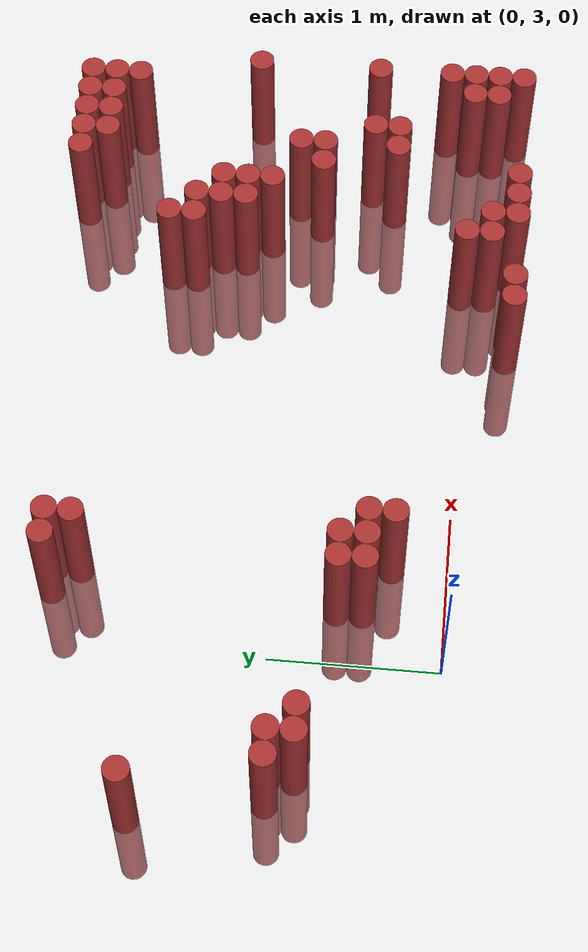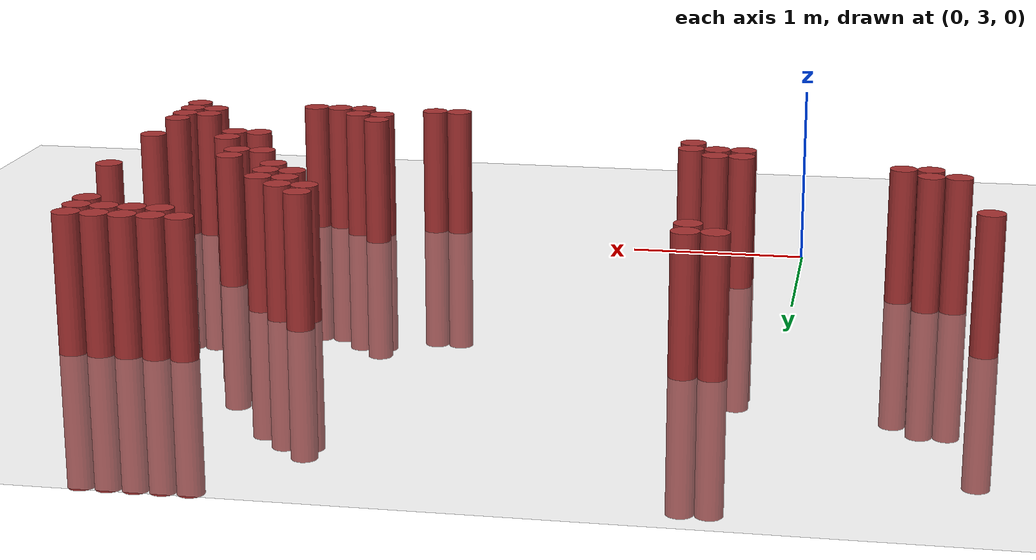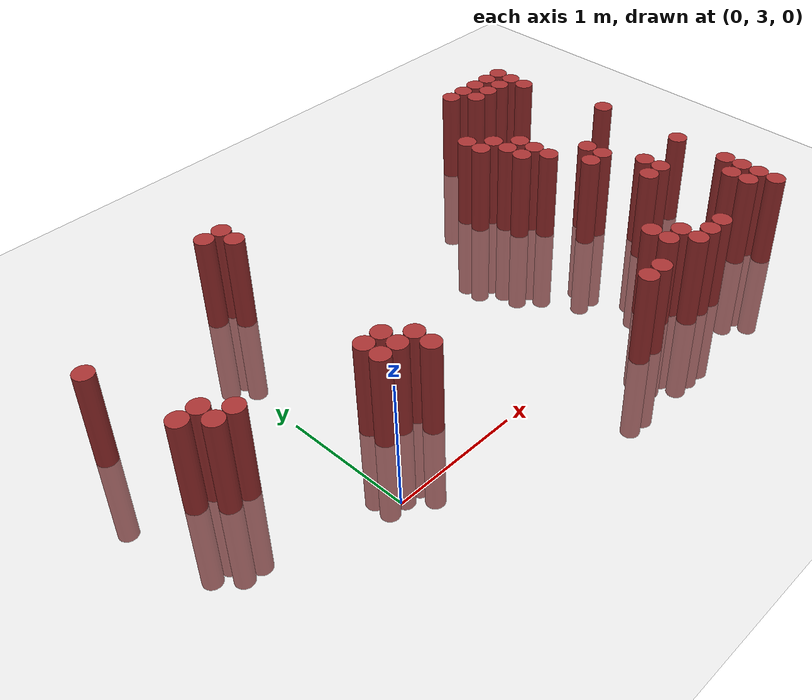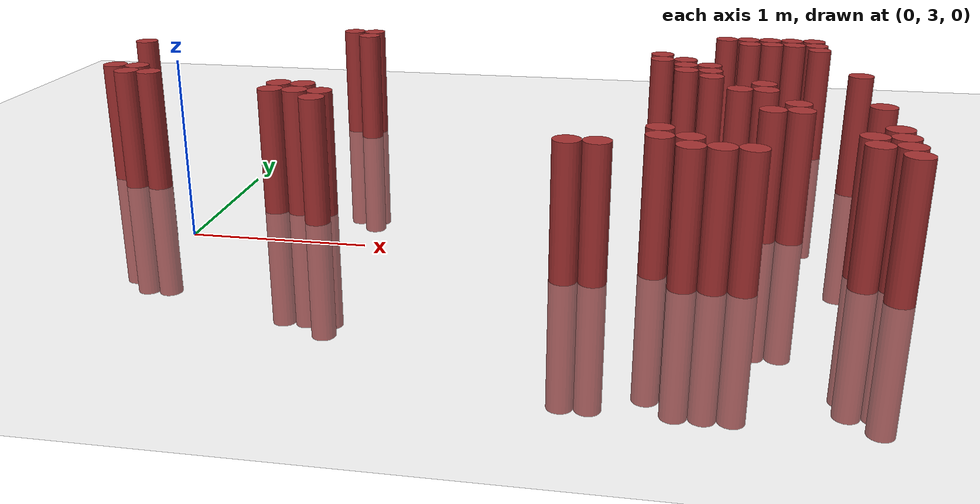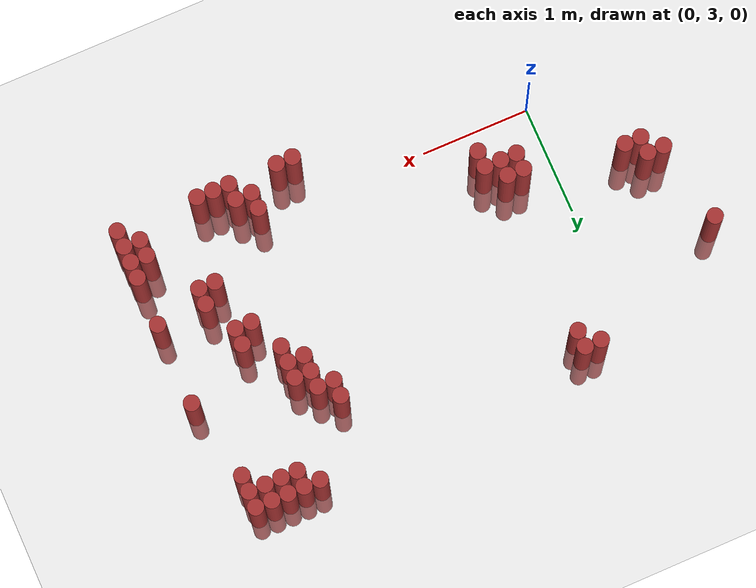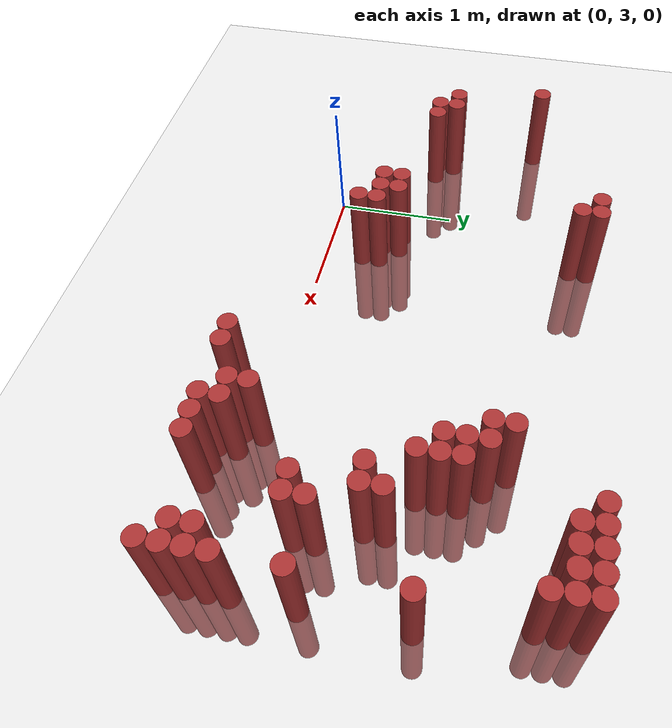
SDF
<sdf version="1.6">
 <world name="default">
  <model name="ground_plane">
   <static>1</static>
   <link name="link">
    <collision name="collision">
     <geometry><plane><normal>0 0 1</normal><size>100 100</size></plane></geometry>
     <surface><friction><ode><mu>100</mu><mu2>50</mu2></ode></friction></surface>
    </collision>
    <visual name="visual">
     <cast_shadows>0</cast_shadows>
     <geometry><plane><normal>0 0 1</normal><size>100 100</size></plane></geometry>
     <material>
      <script><uri>file://media/materials/scripts/gazebo.material</uri><name>Gazebo/Grey</name></script>
     </material>
    </visual>
   </link>
  </model>
  <model name="unit_cylinder_321">
   <static>1</static>
   <pose>-1.025000 4.675000 0.000000 0.000000 0.000000 0.000000</pose>
   <link name="link">
    <inertial>
     <mass>1</mass>
     <inertia><ixx>0.145833</ixx><ixy>0</ixy><ixz>0</ixz><iyy>0.145833</iyy><iyz>0</iyz><izz>0.125</izz></inertia>
    </inertial>
    <collision name="collision">
     <geometry><cylinder><radius>0.075000</radius><length>1.5</length></cylinder></geometry>
    </collision>
    <visual name="visual">
     <geometry><cylinder><radius>0.075000</radius><length>1.5</length></cylinder></geometry>
     <material>
      <ambient>0.648000 0.192000 0.192000 1</ambient>
      <diffuse>0.648000 0.192000 0.192000 1</diffuse>
     </material>
     <material>
      <script><name>Gazebo/Grey</name><uri>file://media/materials/scripts/gazebo.material</uri></script>
     </material>
    </visual>
   </link>
  </model>
  <model name="unit_cylinder_322">
   <static>1</static>
   <pose>-0.875000 3.925000 0.000000 0.000000 0.000000 0.000000</pose>
   <link name="link">
    <inertial>
     <mass>1</mass>
     <inertia><ixx>0.145833</ixx><ixy>0</ixy><ixz>0</ixz><iyy>0.145833</iyy><iyz>0</iyz><izz>0.125</izz></inertia>
    </inertial>
    <collision name="collision">
     <geometry><cylinder><radius>0.075000</radius><length>1.5</length></cylinder></geometry>
    </collision>
    <visual name="visual">
     <geometry><cylinder><radius>0.075000</radius><length>1.5</length></cylinder></geometry>
     <material>
      <ambient>0.648000 0.192000 0.192000 1</ambient>
      <diffuse>0.648000 0.192000 0.192000 1</diffuse>
     </material>
     <material>
      <script><name>Gazebo/Grey</name><uri>file://media/materials/scripts/gazebo.material</uri></script>
     </material>
    </visual>
   </link>
  </model>
  <model name="unit_cylinder_323">
   <static>1</static>
   <pose>-0.725000 3.775000 0.000000 0.000000 0.000000 0.000000</pose>
   <link name="link">
    <inertial>
     <mass>1</mass>
     <inertia><ixx>0.145833</ixx><ixy>0</ixy><ixz>0</ixz><iyy>0.145833</iyy><iyz>0</iyz><izz>0.125</izz></inertia>
    </inertial>
    <collision name="collision">
     <geometry><cylinder><radius>0.075000</radius><length>1.5</length></cylinder></geometry>
    </collision>
    <visual name="visual">
     <geometry><cylinder><radius>0.075000</radius><length>1.5</length></cylinder></geometry>
     <material>
      <ambient>0.648000 0.192000 0.192000 1</ambient>
      <diffuse>0.648000 0.192000 0.192000 1</diffuse>
     </material>
     <material>
      <script><name>Gazebo/Grey</name><uri>file://media/materials/scripts/gazebo.material</uri></script>
     </material>
    </visual>
   </link>
  </model>
  <model name="unit_cylinder_324">
   <static>1</static>
   <pose>-0.725000 3.925000 0.000000 0.000000 0.000000 0.000000</pose>
   <link name="link">
    <inertial>
     <mass>1</mass>
     <inertia><ixx>0.145833</ixx><ixy>0</ixy><ixz>0</ixz><iyy>0.145833</iyy><iyz>0</iyz><izz>0.125</izz></inertia>
    </inertial>
    <collision name="collision">
     <geometry><cylinder><radius>0.075000</radius><length>1.5</length></cylinder></geometry>
    </collision>
    <visual name="visual">
     <geometry><cylinder><radius>0.075000</radius><length>1.5</length></cylinder></geometry>
     <material>
      <ambient>0.648000 0.192000 0.192000 1</ambient>
      <diffuse>0.648000 0.192000 0.192000 1</diffuse>
     </material>
     <material>
      <script><name>Gazebo/Grey</name><uri>file://media/materials/scripts/gazebo.material</uri></script>
     </material>
    </visual>
   </link>
  </model>
  <model name="unit_cylinder_325">
   <static>1</static>
   <pose>-0.575000 3.775000 0.000000 0.000000 0.000000 0.000000</pose>
   <link name="link">
    <inertial>
     <mass>1</mass>
     <inertia><ixx>0.145833</ixx><ixy>0</ixy><ixz>0</ixz><iyy>0.145833</iyy><iyz>0</iyz><izz>0.125</izz></inertia>
    </inertial>
    <collision name="collision">
     <geometry><cylinder><radius>0.075000</radius><length>1.5</length></cylinder></geometry>
    </collision>
    <visual name="visual">
     <geometry><cylinder><radius>0.075000</radius><length>1.5</length></cylinder></geometry>
     <material>
      <ambient>0.648000 0.192000 0.192000 1</ambient>
      <diffuse>0.648000 0.192000 0.192000 1</diffuse>
     </material>
     <material>
      <script><name>Gazebo/Grey</name><uri>file://media/materials/scripts/gazebo.material</uri></script>
     </material>
    </visual>
   </link>
  </model>
  <model name="unit_cylinder_342">
   <static>1</static>
   <pose>0.325000 3.475000 0.000000 0.000000 0.000000 0.000000</pose>
   <link name="link">
    <inertial>
     <mass>1</mass>
     <inertia><ixx>0.145833</ixx><ixy>0</ixy><ixz>0</ixz><iyy>0.145833</iyy><iyz>0</iyz><izz>0.125</izz></inertia>
    </inertial>
    <collision name="collision">
     <geometry><cylinder><radius>0.075000</radius><length>1.5</length></cylinder></geometry>
    </collision>
    <visual name="visual">
     <geometry><cylinder><radius>0.075000</radius><length>1.5</length></cylinder></geometry>
     <material>
      <ambient>0.648000 0.192000 0.192000 1</ambient>
      <diffuse>0.648000 0.192000 0.192000 1</diffuse>
     </material>
     <material>
      <script><name>Gazebo/Grey</name><uri>file://media/materials/scripts/gazebo.material</uri></script>
     </material>
    </visual>
   </link>
  </model>
  <model name="unit_cylinder_343">
   <static>1</static>
   <pose>0.325000 3.625000 0.000000 0.000000 0.000000 0.000000</pose>
   <link name="link">
    <inertial>
     <mass>1</mass>
     <inertia><ixx>0.145833</ixx><ixy>0</ixy><ixz>0</ixz><iyy>0.145833</iyy><iyz>0</iyz><izz>0.125</izz></inertia>
    </inertial>
    <collision name="collision">
     <geometry><cylinder><radius>0.075000</radius><length>1.5</length></cylinder></geometry>
    </collision>
    <visual name="visual">
     <geometry><cylinder><radius>0.075000</radius><length>1.5</length></cylinder></geometry>
     <material>
      <ambient>0.648000 0.192000 0.192000 1</ambient>
      <diffuse>0.648000 0.192000 0.192000 1</diffuse>
     </material>
     <material>
      <script><name>Gazebo/Grey</name><uri>file://media/materials/scripts/gazebo.material</uri></script>
     </material>
    </visual>
   </link>
  </model>
  <model name="unit_cylinder_344">
   <static>1</static>
   <pose>0.325000 5.275000 0.000000 0.000000 0.000000 0.000000</pose>
   <link name="link">
    <inertial>
     <mass>1</mass>
     <inertia><ixx>0.145833</ixx><ixy>0</ixy><ixz>0</ixz><iyy>0.145833</iyy><iyz>0</iyz><izz>0.125</izz></inertia>
    </inertial>
    <collision name="collision">
     <geometry><cylinder><radius>0.075000</radius><length>1.5</length></cylinder></geometry>
    </collision>
    <visual name="visual">
     <geometry><cylinder><radius>0.075000</radius><length>1.5</length></cylinder></geometry>
     <material>
      <ambient>0.648000 0.192000 0.192000 1</ambient>
      <diffuse>0.648000 0.192000 0.192000 1</diffuse>
     </material>
     <material>
      <script><name>Gazebo/Grey</name><uri>file://media/materials/scripts/gazebo.material</uri></script>
     </material>
    </visual>
   </link>
  </model>
  <model name="unit_cylinder_350">
   <static>1</static>
   <pose>0.475000 3.475000 0.000000 0.000000 0.000000 0.000000</pose>
   <link name="link">
    <inertial>
     <mass>1</mass>
     <inertia><ixx>0.145833</ixx><ixy>0</ixy><ixz>0</ixz><iyy>0.145833</iyy><iyz>0</iyz><izz>0.125</izz></inertia>
    </inertial>
    <collision name="collision">
     <geometry><cylinder><radius>0.075000</radius><length>1.5</length></cylinder></geometry>
    </collision>
    <visual name="visual">
     <geometry><cylinder><radius>0.075000</radius><length>1.5</length></cylinder></geometry>
     <material>
      <ambient>0.648000 0.192000 0.192000 1</ambient>
      <diffuse>0.648000 0.192000 0.192000 1</diffuse>
     </material>
     <material>
      <script><name>Gazebo/Grey</name><uri>file://media/materials/scripts/gazebo.material</uri></script>
     </material>
    </visual>
   </link>
  </model>
  <model name="unit_cylinder_351">
   <static>1</static>
   <pose>0.475000 3.625000 0.000000 0.000000 0.000000 0.000000</pose>
   <link name="link">
    <inertial>
     <mass>1</mass>
     <inertia><ixx>0.145833</ixx><ixy>0</ixy><ixz>0</ixz><iyy>0.145833</iyy><iyz>0</iyz><izz>0.125</izz></inertia>
    </inertial>
    <collision name="collision">
     <geometry><cylinder><radius>0.075000</radius><length>1.5</length></cylinder></geometry>
    </collision>
    <visual name="visual">
     <geometry><cylinder><radius>0.075000</radius><length>1.5</length></cylinder></geometry>
     <material>
      <ambient>0.648000 0.192000 0.192000 1</ambient>
      <diffuse>0.648000 0.192000 0.192000 1</diffuse>
     </material>
     <material>
      <script><name>Gazebo/Grey</name><uri>file://media/materials/scripts/gazebo.material</uri></script>
     </material>
    </visual>
   </link>
  </model>
  <model name="unit_cylinder_352">
   <static>1</static>
   <pose>0.475000 5.125000 0.000000 0.000000 0.000000 0.000000</pose>
   <link name="link">
    <inertial>
     <mass>1</mass>
     <inertia><ixx>0.145833</ixx><ixy>0</ixy><ixz>0</ixz><iyy>0.145833</iyy><iyz>0</iyz><izz>0.125</izz></inertia>
    </inertial>
    <collision name="collision">
     <geometry><cylinder><radius>0.075000</radius><length>1.5</length></cylinder></geometry>
    </collision>
    <visual name="visual">
     <geometry><cylinder><radius>0.075000</radius><length>1.5</length></cylinder></geometry>
     <material>
      <ambient>0.648000 0.192000 0.192000 1</ambient>
      <diffuse>0.648000 0.192000 0.192000 1</diffuse>
     </material>
     <material>
      <script><name>Gazebo/Grey</name><uri>file://media/materials/scripts/gazebo.material</uri></script>
     </material>
    </visual>
   </link>
  </model>
  <model name="unit_cylinder_353">
   <static>1</static>
   <pose>0.475000 5.275000 0.000000 0.000000 0.000000 0.000000</pose>
   <link name="link">
    <inertial>
     <mass>1</mass>
     <inertia><ixx>0.145833</ixx><ixy>0</ixy><ixz>0</ixz><iyy>0.145833</iyy><iyz>0</iyz><izz>0.125</izz></inertia>
    </inertial>
    <collision name="collision">
     <geometry><cylinder><radius>0.075000</radius><length>1.5</length></cylinder></geometry>
    </collision>
    <visual name="visual">
     <geometry><cylinder><radius>0.075000</radius><length>1.5</length></cylinder></geometry>
     <material>
      <ambient>0.648000 0.192000 0.192000 1</ambient>
      <diffuse>0.648000 0.192000 0.192000 1</diffuse>
     </material>
     <material>
      <script><name>Gazebo/Grey</name><uri>file://media/materials/scripts/gazebo.material</uri></script>
     </material>
    </visual>
   </link>
  </model>
  <model name="unit_cylinder_359">
   <static>1</static>
   <pose>0.625000 3.325000 0.000000 0.000000 0.000000 0.000000</pose>
   <link name="link">
    <inertial>
     <mass>1</mass>
     <inertia><ixx>0.145833</ixx><ixy>0</ixy><ixz>0</ixz><iyy>0.145833</iyy><iyz>0</iyz><izz>0.125</izz></inertia>
    </inertial>
    <collision name="collision">
     <geometry><cylinder><radius>0.075000</radius><length>1.5</length></cylinder></geometry>
    </collision>
    <visual name="visual">
     <geometry><cylinder><radius>0.075000</radius><length>1.5</length></cylinder></geometry>
     <material>
      <ambient>0.648000 0.192000 0.192000 1</ambient>
      <diffuse>0.648000 0.192000 0.192000 1</diffuse>
     </material>
     <material>
      <script><name>Gazebo/Grey</name><uri>file://media/materials/scripts/gazebo.material</uri></script>
     </material>
    </visual>
   </link>
  </model>
  <model name="unit_cylinder_360">
   <static>1</static>
   <pose>0.625000 3.475000 0.000000 0.000000 0.000000 0.000000</pose>
   <link name="link">
    <inertial>
     <mass>1</mass>
     <inertia><ixx>0.145833</ixx><ixy>0</ixy><ixz>0</ixz><iyy>0.145833</iyy><iyz>0</iyz><izz>0.125</izz></inertia>
    </inertial>
    <collision name="collision">
     <geometry><cylinder><radius>0.075000</radius><length>1.5</length></cylinder></geometry>
    </collision>
    <visual name="visual">
     <geometry><cylinder><radius>0.075000</radius><length>1.5</length></cylinder></geometry>
     <material>
      <ambient>0.648000 0.192000 0.192000 1</ambient>
      <diffuse>0.648000 0.192000 0.192000 1</diffuse>
     </material>
     <material>
      <script><name>Gazebo/Grey</name><uri>file://media/materials/scripts/gazebo.material</uri></script>
     </material>
    </visual>
   </link>
  </model>
  <model name="unit_cylinder_386">
   <static>1</static>
   <pose>2.125000 2.725000 0.000000 0.000000 0.000000 0.000000</pose>
   <link name="link">
    <inertial>
     <mass>1</mass>
     <inertia><ixx>0.145833</ixx><ixy>0</ixy><ixz>0</ixz><iyy>0.145833</iyy><iyz>0</iyz><izz>0.125</izz></inertia>
    </inertial>
    <collision name="collision">
     <geometry><cylinder><radius>0.075000</radius><length>1.5</length></cylinder></geometry>
    </collision>
    <visual name="visual">
     <geometry><cylinder><radius>0.075000</radius><length>1.5</length></cylinder></geometry>
     <material>
      <ambient>0.648000 0.192000 0.192000 1</ambient>
      <diffuse>0.648000 0.192000 0.192000 1</diffuse>
     </material>
     <material>
      <script><name>Gazebo/Grey</name><uri>file://media/materials/scripts/gazebo.material</uri></script>
     </material>
    </visual>
   </link>
  </model>
  <model name="unit_cylinder_392">
   <static>1</static>
   <pose>2.275000 2.725000 0.000000 0.000000 0.000000 0.000000</pose>
   <link name="link">
    <inertial>
     <mass>1</mass>
     <inertia><ixx>0.145833</ixx><ixy>0</ixy><ixz>0</ixz><iyy>0.145833</iyy><iyz>0</iyz><izz>0.125</izz></inertia>
    </inertial>
    <collision name="collision">
     <geometry><cylinder><radius>0.075000</radius><length>1.5</length></cylinder></geometry>
    </collision>
    <visual name="visual">
     <geometry><cylinder><radius>0.075000</radius><length>1.5</length></cylinder></geometry>
     <material>
      <ambient>0.648000 0.192000 0.192000 1</ambient>
      <diffuse>0.648000 0.192000 0.192000 1</diffuse>
     </material>
     <material>
      <script><name>Gazebo/Grey</name><uri>file://media/materials/scripts/gazebo.material</uri></script>
     </material>
    </visual>
   </link>
  </model>
  <model name="unit_cylinder_397">
   <static>1</static>
   <pose>2.575000 2.875000 0.000000 0.000000 0.000000 0.000000</pose>
   <link name="link">
    <inertial>
     <mass>1</mass>
     <inertia><ixx>0.145833</ixx><ixy>0</ixy><ixz>0</ixz><iyy>0.145833</iyy><iyz>0</iyz><izz>0.125</izz></inertia>
    </inertial>
    <collision name="collision">
     <geometry><cylinder><radius>0.075000</radius><length>1.5</length></cylinder></geometry>
    </collision>
    <visual name="visual">
     <geometry><cylinder><radius>0.075000</radius><length>1.5</length></cylinder></geometry>
     <material>
      <ambient>0.648000 0.192000 0.192000 1</ambient>
      <diffuse>0.648000 0.192000 0.192000 1</diffuse>
     </material>
     <material>
      <script><name>Gazebo/Grey</name><uri>file://media/materials/scripts/gazebo.material</uri></script>
     </material>
    </visual>
   </link>
  </model>
  <model name="unit_cylinder_398">
   <static>1</static>
   <pose>2.575000 3.025000 0.000000 0.000000 0.000000 0.000000</pose>
   <link name="link">
    <inertial>
     <mass>1</mass>
     <inertia><ixx>0.145833</ixx><ixy>0</ixy><ixz>0</ixz><iyy>0.145833</iyy><iyz>0</iyz><izz>0.125</izz></inertia>
    </inertial>
    <collision name="collision">
     <geometry><cylinder><radius>0.075000</radius><length>1.5</length></cylinder></geometry>
    </collision>
    <visual name="visual">
     <geometry><cylinder><radius>0.075000</radius><length>1.5</length></cylinder></geometry>
     <material>
      <ambient>0.648000 0.192000 0.192000 1</ambient>
      <diffuse>0.648000 0.192000 0.192000 1</diffuse>
     </material>
     <material>
      <script><name>Gazebo/Grey</name><uri>file://media/materials/scripts/gazebo.material</uri></script>
     </material>
    </visual>
   </link>
  </model>
  <model name="unit_cylinder_399">
   <static>1</static>
   <pose>2.575000 4.675000 0.000000 0.000000 0.000000 0.000000</pose>
   <link name="link">
    <inertial>
     <mass>1</mass>
     <inertia><ixx>0.145833</ixx><ixy>0</ixy><ixz>0</ixz><iyy>0.145833</iyy><iyz>0</iyz><izz>0.125</izz></inertia>
    </inertial>
    <collision name="collision">
     <geometry><cylinder><radius>0.075000</radius><length>1.5</length></cylinder></geometry>
    </collision>
    <visual name="visual">
     <geometry><cylinder><radius>0.075000</radius><length>1.5</length></cylinder></geometry>
     <material>
      <ambient>0.648000 0.192000 0.192000 1</ambient>
      <diffuse>0.648000 0.192000 0.192000 1</diffuse>
     </material>
     <material>
      <script><name>Gazebo/Grey</name><uri>file://media/materials/scripts/gazebo.material</uri></script>
     </material>
    </visual>
   </link>
  </model>
  <model name="unit_cylinder_400">
   <static>1</static>
   <pose>2.575000 4.825000 0.000000 0.000000 0.000000 0.000000</pose>
   <link name="link">
    <inertial>
     <mass>1</mass>
     <inertia><ixx>0.145833</ixx><ixy>0</ixy><ixz>0</ixz><iyy>0.145833</iyy><iyz>0</iyz><izz>0.125</izz></inertia>
    </inertial>
    <collision name="collision">
     <geometry><cylinder><radius>0.075000</radius><length>1.5</length></cylinder></geometry>
    </collision>
    <visual name="visual">
     <geometry><cylinder><radius>0.075000</radius><length>1.5</length></cylinder></geometry>
     <material>
      <ambient>0.648000 0.192000 0.192000 1</ambient>
      <diffuse>0.648000 0.192000 0.192000 1</diffuse>
     </material>
     <material>
      <script><name>Gazebo/Grey</name><uri>file://media/materials/scripts/gazebo.material</uri></script>
     </material>
    </visual>
   </link>
  </model>
  <model name="unit_cylinder_402">
   <static>1</static>
   <pose>2.725000 2.725000 0.000000 0.000000 0.000000 0.000000</pose>
   <link name="link">
    <inertial>
     <mass>1</mass>
     <inertia><ixx>0.145833</ixx><ixy>0</ixy><ixz>0</ixz><iyy>0.145833</iyy><iyz>0</iyz><izz>0.125</izz></inertia>
    </inertial>
    <collision name="collision">
     <geometry><cylinder><radius>0.075000</radius><length>1.5</length></cylinder></geometry>
    </collision>
    <visual name="visual">
     <geometry><cylinder><radius>0.075000</radius><length>1.5</length></cylinder></geometry>
     <material>
      <ambient>0.648000 0.192000 0.192000 1</ambient>
      <diffuse>0.648000 0.192000 0.192000 1</diffuse>
     </material>
     <material>
      <script><name>Gazebo/Grey</name><uri>file://media/materials/scripts/gazebo.material</uri></script>
     </material>
    </visual>
   </link>
  </model>
  <model name="unit_cylinder_403">
   <static>1</static>
   <pose>2.725000 2.875000 0.000000 0.000000 0.000000 0.000000</pose>
   <link name="link">
    <inertial>
     <mass>1</mass>
     <inertia><ixx>0.145833</ixx><ixy>0</ixy><ixz>0</ixz><iyy>0.145833</iyy><iyz>0</iyz><izz>0.125</izz></inertia>
    </inertial>
    <collision name="collision">
     <geometry><cylinder><radius>0.075000</radius><length>1.5</length></cylinder></geometry>
    </collision>
    <visual name="visual">
     <geometry><cylinder><radius>0.075000</radius><length>1.5</length></cylinder></geometry>
     <material>
      <ambient>0.648000 0.192000 0.192000 1</ambient>
      <diffuse>0.648000 0.192000 0.192000 1</diffuse>
     </material>
     <material>
      <script><name>Gazebo/Grey</name><uri>file://media/materials/scripts/gazebo.material</uri></script>
     </material>
    </visual>
   </link>
  </model>
  <model name="unit_cylinder_404">
   <static>1</static>
   <pose>2.725000 4.375000 0.000000 0.000000 0.000000 0.000000</pose>
   <link name="link">
    <inertial>
     <mass>1</mass>
     <inertia><ixx>0.145833</ixx><ixy>0</ixy><ixz>0</ixz><iyy>0.145833</iyy><iyz>0</iyz><izz>0.125</izz></inertia>
    </inertial>
    <collision name="collision">
     <geometry><cylinder><radius>0.075000</radius><length>1.5</length></cylinder></geometry>
    </collision>
    <visual name="visual">
     <geometry><cylinder><radius>0.075000</radius><length>1.5</length></cylinder></geometry>
     <material>
      <ambient>0.648000 0.192000 0.192000 1</ambient>
      <diffuse>0.648000 0.192000 0.192000 1</diffuse>
     </material>
     <material>
      <script><name>Gazebo/Grey</name><uri>file://media/materials/scripts/gazebo.material</uri></script>
     </material>
    </visual>
   </link>
  </model>
  <model name="unit_cylinder_405">
   <static>1</static>
   <pose>2.725000 4.525000 0.000000 0.000000 0.000000 0.000000</pose>
   <link name="link">
    <inertial>
     <mass>1</mass>
     <inertia><ixx>0.145833</ixx><ixy>0</ixy><ixz>0</ixz><iyy>0.145833</iyy><iyz>0</iyz><izz>0.125</izz></inertia>
    </inertial>
    <collision name="collision">
     <geometry><cylinder><radius>0.075000</radius><length>1.5</length></cylinder></geometry>
    </collision>
    <visual name="visual">
     <geometry><cylinder><radius>0.075000</radius><length>1.5</length></cylinder></geometry>
     <material>
      <ambient>0.648000 0.192000 0.192000 1</ambient>
      <diffuse>0.648000 0.192000 0.192000 1</diffuse>
     </material>
     <material>
      <script><name>Gazebo/Grey</name><uri>file://media/materials/scripts/gazebo.material</uri></script>
     </material>
    </visual>
   </link>
  </model>
  <model name="unit_cylinder_406">
   <static>1</static>
   <pose>2.725000 4.675000 0.000000 0.000000 0.000000 0.000000</pose>
   <link name="link">
    <inertial>
     <mass>1</mass>
     <inertia><ixx>0.145833</ixx><ixy>0</ixy><ixz>0</ixz><iyy>0.145833</iyy><iyz>0</iyz><izz>0.125</izz></inertia>
    </inertial>
    <collision name="collision">
     <geometry><cylinder><radius>0.075000</radius><length>1.5</length></cylinder></geometry>
    </collision>
    <visual name="visual">
     <geometry><cylinder><radius>0.075000</radius><length>1.5</length></cylinder></geometry>
     <material>
      <ambient>0.648000 0.192000 0.192000 1</ambient>
      <diffuse>0.648000 0.192000 0.192000 1</diffuse>
     </material>
     <material>
      <script><name>Gazebo/Grey</name><uri>file://media/materials/scripts/gazebo.material</uri></script>
     </material>
    </visual>
   </link>
  </model>
  <model name="unit_cylinder_409">
   <static>1</static>
   <pose>2.875000 2.725000 0.000000 0.000000 0.000000 0.000000</pose>
   <link name="link">
    <inertial>
     <mass>1</mass>
     <inertia><ixx>0.145833</ixx><ixy>0</ixy><ixz>0</ixz><iyy>0.145833</iyy><iyz>0</iyz><izz>0.125</izz></inertia>
    </inertial>
    <collision name="collision">
     <geometry><cylinder><radius>0.075000</radius><length>1.5</length></cylinder></geometry>
    </collision>
    <visual name="visual">
     <geometry><cylinder><radius>0.075000</radius><length>1.5</length></cylinder></geometry>
     <material>
      <ambient>0.648000 0.192000 0.192000 1</ambient>
      <diffuse>0.648000 0.192000 0.192000 1</diffuse>
     </material>
     <material>
      <script><name>Gazebo/Grey</name><uri>file://media/materials/scripts/gazebo.material</uri></script>
     </material>
    </visual>
   </link>
  </model>
  <model name="unit_cylinder_410">
   <static>1</static>
   <pose>2.875000 4.225000 0.000000 0.000000 0.000000 0.000000</pose>
   <link name="link">
    <inertial>
     <mass>1</mass>
     <inertia><ixx>0.145833</ixx><ixy>0</ixy><ixz>0</ixz><iyy>0.145833</iyy><iyz>0</iyz><izz>0.125</izz></inertia>
    </inertial>
    <collision name="collision">
     <geometry><cylinder><radius>0.075000</radius><length>1.5</length></cylinder></geometry>
    </collision>
    <visual name="visual">
     <geometry><cylinder><radius>0.075000</radius><length>1.5</length></cylinder></geometry>
     <material>
      <ambient>0.648000 0.192000 0.192000 1</ambient>
      <diffuse>0.648000 0.192000 0.192000 1</diffuse>
     </material>
     <material>
      <script><name>Gazebo/Grey</name><uri>file://media/materials/scripts/gazebo.material</uri></script>
     </material>
    </visual>
   </link>
  </model>
  <model name="unit_cylinder_411">
   <static>1</static>
   <pose>2.875000 4.375000 0.000000 0.000000 0.000000 0.000000</pose>
   <link name="link">
    <inertial>
     <mass>1</mass>
     <inertia><ixx>0.145833</ixx><ixy>0</ixy><ixz>0</ixz><iyy>0.145833</iyy><iyz>0</iyz><izz>0.125</izz></inertia>
    </inertial>
    <collision name="collision">
     <geometry><cylinder><radius>0.075000</radius><length>1.5</length></cylinder></geometry>
    </collision>
    <visual name="visual">
     <geometry><cylinder><radius>0.075000</radius><length>1.5</length></cylinder></geometry>
     <material>
      <ambient>0.648000 0.192000 0.192000 1</ambient>
      <diffuse>0.648000 0.192000 0.192000 1</diffuse>
     </material>
     <material>
      <script><name>Gazebo/Grey</name><uri>file://media/materials/scripts/gazebo.material</uri></script>
     </material>
    </visual>
   </link>
  </model>
  <model name="unit_cylinder_412">
   <static>1</static>
   <pose>2.875000 4.525000 0.000000 0.000000 0.000000 0.000000</pose>
   <link name="link">
    <inertial>
     <mass>1</mass>
     <inertia><ixx>0.145833</ixx><ixy>0</ixy><ixz>0</ixz><iyy>0.145833</iyy><iyz>0</iyz><izz>0.125</izz></inertia>
    </inertial>
    <collision name="collision">
     <geometry><cylinder><radius>0.075000</radius><length>1.5</length></cylinder></geometry>
    </collision>
    <visual name="visual">
     <geometry><cylinder><radius>0.075000</radius><length>1.5</length></cylinder></geometry>
     <material>
      <ambient>0.648000 0.192000 0.192000 1</ambient>
      <diffuse>0.648000 0.192000 0.192000 1</diffuse>
     </material>
     <material>
      <script><name>Gazebo/Grey</name><uri>file://media/materials/scripts/gazebo.material</uri></script>
     </material>
    </visual>
   </link>
  </model>
  <model name="unit_cylinder_415">
   <static>1</static>
   <pose>3.025000 2.725000 0.000000 0.000000 0.000000 0.000000</pose>
   <link name="link">
    <inertial>
     <mass>1</mass>
     <inertia><ixx>0.145833</ixx><ixy>0</ixy><ixz>0</ixz><iyy>0.145833</iyy><iyz>0</iyz><izz>0.125</izz></inertia>
    </inertial>
    <collision name="collision">
     <geometry><cylinder><radius>0.075000</radius><length>1.5</length></cylinder></geometry>
    </collision>
    <visual name="visual">
     <geometry><cylinder><radius>0.075000</radius><length>1.5</length></cylinder></geometry>
     <material>
      <ambient>0.648000 0.192000 0.192000 1</ambient>
      <diffuse>0.648000 0.192000 0.192000 1</diffuse>
     </material>
     <material>
      <script><name>Gazebo/Grey</name><uri>file://media/materials/scripts/gazebo.material</uri></script>
     </material>
    </visual>
   </link>
  </model>
  <model name="unit_cylinder_416">
   <static>1</static>
   <pose>3.025000 3.925000 0.000000 0.000000 0.000000 0.000000</pose>
   <link name="link">
    <inertial>
     <mass>1</mass>
     <inertia><ixx>0.145833</ixx><ixy>0</ixy><ixz>0</ixz><iyy>0.145833</iyy><iyz>0</iyz><izz>0.125</izz></inertia>
    </inertial>
    <collision name="collision">
     <geometry><cylinder><radius>0.075000</radius><length>1.5</length></cylinder></geometry>
    </collision>
    <visual name="visual">
     <geometry><cylinder><radius>0.075000</radius><length>1.5</length></cylinder></geometry>
     <material>
      <ambient>0.648000 0.192000 0.192000 1</ambient>
      <diffuse>0.648000 0.192000 0.192000 1</diffuse>
     </material>
     <material>
      <script><name>Gazebo/Grey</name><uri>file://media/materials/scripts/gazebo.material</uri></script>
     </material>
    </visual>
   </link>
  </model>
  <model name="unit_cylinder_417">
   <static>1</static>
   <pose>3.025000 5.425000 0.000000 0.000000 0.000000 0.000000</pose>
   <link name="link">
    <inertial>
     <mass>1</mass>
     <inertia><ixx>0.145833</ixx><ixy>0</ixy><ixz>0</ixz><iyy>0.145833</iyy><iyz>0</iyz><izz>0.125</izz></inertia>
    </inertial>
    <collision name="collision">
     <geometry><cylinder><radius>0.075000</radius><length>1.5</length></cylinder></geometry>
    </collision>
    <visual name="visual">
     <geometry><cylinder><radius>0.075000</radius><length>1.5</length></cylinder></geometry>
     <material>
      <ambient>0.648000 0.192000 0.192000 1</ambient>
      <diffuse>0.648000 0.192000 0.192000 1</diffuse>
     </material>
     <material>
      <script><name>Gazebo/Grey</name><uri>file://media/materials/scripts/gazebo.material</uri></script>
     </material>
    </visual>
   </link>
  </model>
  <model name="unit_cylinder_420">
   <static>1</static>
   <pose>3.175000 3.475000 0.000000 0.000000 0.000000 0.000000</pose>
   <link name="link">
    <inertial>
     <mass>1</mass>
     <inertia><ixx>0.145833</ixx><ixy>0</ixy><ixz>0</ixz><iyy>0.145833</iyy><iyz>0</iyz><izz>0.125</izz></inertia>
    </inertial>
    <collision name="collision">
     <geometry><cylinder><radius>0.075000</radius><length>1.5</length></cylinder></geometry>
    </collision>
    <visual name="visual">
     <geometry><cylinder><radius>0.075000</radius><length>1.5</length></cylinder></geometry>
     <material>
      <ambient>0.648000 0.192000 0.192000 1</ambient>
      <diffuse>0.648000 0.192000 0.192000 1</diffuse>
     </material>
     <material>
      <script><name>Gazebo/Grey</name><uri>file://media/materials/scripts/gazebo.material</uri></script>
     </material>
    </visual>
   </link>
  </model>
  <model name="unit_cylinder_421">
   <static>1</static>
   <pose>3.175000 3.925000 0.000000 0.000000 0.000000 0.000000</pose>
   <link name="link">
    <inertial>
     <mass>1</mass>
     <inertia><ixx>0.145833</ixx><ixy>0</ixy><ixz>0</ixz><iyy>0.145833</iyy><iyz>0</iyz><izz>0.125</izz></inertia>
    </inertial>
    <collision name="collision">
     <geometry><cylinder><radius>0.075000</radius><length>1.5</length></cylinder></geometry>
    </collision>
    <visual name="visual">
     <geometry><cylinder><radius>0.075000</radius><length>1.5</length></cylinder></geometry>
     <material>
      <ambient>0.648000 0.192000 0.192000 1</ambient>
      <diffuse>0.648000 0.192000 0.192000 1</diffuse>
     </material>
     <material>
      <script><name>Gazebo/Grey</name><uri>file://media/materials/scripts/gazebo.material</uri></script>
     </material>
    </visual>
   </link>
  </model>
  <model name="unit_cylinder_422">
   <static>1</static>
   <pose>3.175000 4.075000 0.000000 0.000000 0.000000 0.000000</pose>
   <link name="link">
    <inertial>
     <mass>1</mass>
     <inertia><ixx>0.145833</ixx><ixy>0</ixy><ixz>0</ixz><iyy>0.145833</iyy><iyz>0</iyz><izz>0.125</izz></inertia>
    </inertial>
    <collision name="collision">
     <geometry><cylinder><radius>0.075000</radius><length>1.5</length></cylinder></geometry>
    </collision>
    <visual name="visual">
     <geometry><cylinder><radius>0.075000</radius><length>1.5</length></cylinder></geometry>
     <material>
      <ambient>0.648000 0.192000 0.192000 1</ambient>
      <diffuse>0.648000 0.192000 0.192000 1</diffuse>
     </material>
     <material>
      <script><name>Gazebo/Grey</name><uri>file://media/materials/scripts/gazebo.material</uri></script>
     </material>
    </visual>
   </link>
  </model>
  <model name="unit_cylinder_423">
   <static>1</static>
   <pose>3.175000 5.275000 0.000000 0.000000 0.000000 0.000000</pose>
   <link name="link">
    <inertial>
     <mass>1</mass>
     <inertia><ixx>0.145833</ixx><ixy>0</ixy><ixz>0</ixz><iyy>0.145833</iyy><iyz>0</iyz><izz>0.125</izz></inertia>
    </inertial>
    <collision name="collision">
     <geometry><cylinder><radius>0.075000</radius><length>1.5</length></cylinder></geometry>
    </collision>
    <visual name="visual">
     <geometry><cylinder><radius>0.075000</radius><length>1.5</length></cylinder></geometry>
     <material>
      <ambient>0.648000 0.192000 0.192000 1</ambient>
      <diffuse>0.648000 0.192000 0.192000 1</diffuse>
     </material>
     <material>
      <script><name>Gazebo/Grey</name><uri>file://media/materials/scripts/gazebo.material</uri></script>
     </material>
    </visual>
   </link>
  </model>
  <model name="unit_cylinder_424">
   <static>1</static>
   <pose>3.175000 5.425000 0.000000 0.000000 0.000000 0.000000</pose>
   <link name="link">
    <inertial>
     <mass>1</mass>
     <inertia><ixx>0.145833</ixx><ixy>0</ixy><ixz>0</ixz><iyy>0.145833</iyy><iyz>0</iyz><izz>0.125</izz></inertia>
    </inertial>
    <collision name="collision">
     <geometry><cylinder><radius>0.075000</radius><length>1.5</length></cylinder></geometry>
    </collision>
    <visual name="visual">
     <geometry><cylinder><radius>0.075000</radius><length>1.5</length></cylinder></geometry>
     <material>
      <ambient>0.648000 0.192000 0.192000 1</ambient>
      <diffuse>0.648000 0.192000 0.192000 1</diffuse>
     </material>
     <material>
      <script><name>Gazebo/Grey</name><uri>file://media/materials/scripts/gazebo.material</uri></script>
     </material>
    </visual>
   </link>
  </model>
  <model name="unit_cylinder_428">
   <static>1</static>
   <pose>3.325000 3.475000 0.000000 0.000000 0.000000 0.000000</pose>
   <link name="link">
    <inertial>
     <mass>1</mass>
     <inertia><ixx>0.145833</ixx><ixy>0</ixy><ixz>0</ixz><iyy>0.145833</iyy><iyz>0</iyz><izz>0.125</izz></inertia>
    </inertial>
    <collision name="collision">
     <geometry><cylinder><radius>0.075000</radius><length>1.5</length></cylinder></geometry>
    </collision>
    <visual name="visual">
     <geometry><cylinder><radius>0.075000</radius><length>1.5</length></cylinder></geometry>
     <material>
      <ambient>0.648000 0.192000 0.192000 1</ambient>
      <diffuse>0.648000 0.192000 0.192000 1</diffuse>
     </material>
     <material>
      <script><name>Gazebo/Grey</name><uri>file://media/materials/scripts/gazebo.material</uri></script>
     </material>
    </visual>
   </link>
  </model>
  <model name="unit_cylinder_429">
   <static>1</static>
   <pose>3.325000 3.625000 0.000000 0.000000 0.000000 0.000000</pose>
   <link name="link">
    <inertial>
     <mass>1</mass>
     <inertia><ixx>0.145833</ixx><ixy>0</ixy><ixz>0</ixz><iyy>0.145833</iyy><iyz>0</iyz><izz>0.125</izz></inertia>
    </inertial>
    <collision name="collision">
     <geometry><cylinder><radius>0.075000</radius><length>1.5</length></cylinder></geometry>
    </collision>
    <visual name="visual">
     <geometry><cylinder><radius>0.075000</radius><length>1.5</length></cylinder></geometry>
     <material>
      <ambient>0.648000 0.192000 0.192000 1</ambient>
      <diffuse>0.648000 0.192000 0.192000 1</diffuse>
     </material>
     <material>
      <script><name>Gazebo/Grey</name><uri>file://media/materials/scripts/gazebo.material</uri></script>
     </material>
    </visual>
   </link>
  </model>
  <model name="unit_cylinder_430">
   <static>1</static>
   <pose>3.325000 5.275000 0.000000 0.000000 0.000000 0.000000</pose>
   <link name="link">
    <inertial>
     <mass>1</mass>
     <inertia><ixx>0.145833</ixx><ixy>0</ixy><ixz>0</ixz><iyy>0.145833</iyy><iyz>0</iyz><izz>0.125</izz></inertia>
    </inertial>
    <collision name="collision">
     <geometry><cylinder><radius>0.075000</radius><length>1.5</length></cylinder></geometry>
    </collision>
    <visual name="visual">
     <geometry><cylinder><radius>0.075000</radius><length>1.5</length></cylinder></geometry>
     <material>
      <ambient>0.648000 0.192000 0.192000 1</ambient>
      <diffuse>0.648000 0.192000 0.192000 1</diffuse>
     </material>
     <material>
      <script><name>Gazebo/Grey</name><uri>file://media/materials/scripts/gazebo.material</uri></script>
     </material>
    </visual>
   </link>
  </model>
  <model name="unit_cylinder_431">
   <static>1</static>
   <pose>3.325000 5.425000 0.000000 0.000000 0.000000 0.000000</pose>
   <link name="link">
    <inertial>
     <mass>1</mass>
     <inertia><ixx>0.145833</ixx><ixy>0</ixy><ixz>0</ixz><iyy>0.145833</iyy><iyz>0</iyz><izz>0.125</izz></inertia>
    </inertial>
    <collision name="collision">
     <geometry><cylinder><radius>0.075000</radius><length>1.5</length></cylinder></geometry>
    </collision>
    <visual name="visual">
     <geometry><cylinder><radius>0.075000</radius><length>1.5</length></cylinder></geometry>
     <material>
      <ambient>0.648000 0.192000 0.192000 1</ambient>
      <diffuse>0.648000 0.192000 0.192000 1</diffuse>
     </material>
     <material>
      <script><name>Gazebo/Grey</name><uri>file://media/materials/scripts/gazebo.material</uri></script>
     </material>
    </visual>
   </link>
  </model>
  <model name="unit_cylinder_437">
   <static>1</static>
   <pose>3.475000 5.275000 0.000000 0.000000 0.000000 0.000000</pose>
   <link name="link">
    <inertial>
     <mass>1</mass>
     <inertia><ixx>0.145833</ixx><ixy>0</ixy><ixz>0</ixz><iyy>0.145833</iyy><iyz>0</iyz><izz>0.125</izz></inertia>
    </inertial>
    <collision name="collision">
     <geometry><cylinder><radius>0.075000</radius><length>1.5</length></cylinder></geometry>
    </collision>
    <visual name="visual">
     <geometry><cylinder><radius>0.075000</radius><length>1.5</length></cylinder></geometry>
     <material>
      <ambient>0.648000 0.192000 0.192000 1</ambient>
      <diffuse>0.648000 0.192000 0.192000 1</diffuse>
     </material>
     <material>
      <script><name>Gazebo/Grey</name><uri>file://media/materials/scripts/gazebo.material</uri></script>
     </material>
    </visual>
   </link>
  </model>
  <model name="unit_cylinder_438">
   <static>1</static>
   <pose>3.475000 5.425000 0.000000 0.000000 0.000000 0.000000</pose>
   <link name="link">
    <inertial>
     <mass>1</mass>
     <inertia><ixx>0.145833</ixx><ixy>0</ixy><ixz>0</ixz><iyy>0.145833</iyy><iyz>0</iyz><izz>0.125</izz></inertia>
    </inertial>
    <collision name="collision">
     <geometry><cylinder><radius>0.075000</radius><length>1.5</length></cylinder></geometry>
    </collision>
    <visual name="visual">
     <geometry><cylinder><radius>0.075000</radius><length>1.5</length></cylinder></geometry>
     <material>
      <ambient>0.648000 0.192000 0.192000 1</ambient>
      <diffuse>0.648000 0.192000 0.192000 1</diffuse>
     </material>
     <material>
      <script><name>Gazebo/Grey</name><uri>file://media/materials/scripts/gazebo.material</uri></script>
     </material>
    </visual>
   </link>
  </model>
  <model name="unit_cylinder_452">
   <static>1</static>
   <pose>3.625000 2.875000 0.000000 0.000000 0.000000 0.000000</pose>
   <link name="link">
    <inertial>
     <mass>1</mass>
     <inertia><ixx>0.145833</ixx><ixy>0</ixy><ixz>0</ixz><iyy>0.145833</iyy><iyz>0</iyz><izz>0.125</izz></inertia>
    </inertial>
    <collision name="collision">
     <geometry><cylinder><radius>0.075000</radius><length>1.5</length></cylinder></geometry>
    </collision>
    <visual name="visual">
     <geometry><cylinder><radius>0.075000</radius><length>1.5</length></cylinder></geometry>
     <material>
      <ambient>0.648000 0.192000 0.192000 1</ambient>
      <diffuse>0.648000 0.192000 0.192000 1</diffuse>
     </material>
     <material>
      <script><name>Gazebo/Grey</name><uri>file://media/materials/scripts/gazebo.material</uri></script>
     </material>
    </visual>
   </link>
  </model>
  <model name="unit_cylinder_453">
   <static>1</static>
   <pose>3.625000 3.025000 0.000000 0.000000 0.000000 0.000000</pose>
   <link name="link">
    <inertial>
     <mass>1</mass>
     <inertia><ixx>0.145833</ixx><ixy>0</ixy><ixz>0</ixz><iyy>0.145833</iyy><iyz>0</iyz><izz>0.125</izz></inertia>
    </inertial>
    <collision name="collision">
     <geometry><cylinder><radius>0.075000</radius><length>1.5</length></cylinder></geometry>
    </collision>
    <visual name="visual">
     <geometry><cylinder><radius>0.075000</radius><length>1.5</length></cylinder></geometry>
     <material>
      <ambient>0.648000 0.192000 0.192000 1</ambient>
      <diffuse>0.648000 0.192000 0.192000 1</diffuse>
     </material>
     <material>
      <script><name>Gazebo/Grey</name><uri>file://media/materials/scripts/gazebo.material</uri></script>
     </material>
    </visual>
   </link>
  </model>
  <model name="unit_cylinder_454">
   <static>1</static>
   <pose>3.625000 5.125000 0.000000 0.000000 0.000000 0.000000</pose>
   <link name="link">
    <inertial>
     <mass>1</mass>
     <inertia><ixx>0.145833</ixx><ixy>0</ixy><ixz>0</ixz><iyy>0.145833</iyy><iyz>0</iyz><izz>0.125</izz></inertia>
    </inertial>
    <collision name="collision">
     <geometry><cylinder><radius>0.075000</radius><length>1.5</length></cylinder></geometry>
    </collision>
    <visual name="visual">
     <geometry><cylinder><radius>0.075000</radius><length>1.5</length></cylinder></geometry>
     <material>
      <ambient>0.648000 0.192000 0.192000 1</ambient>
      <diffuse>0.648000 0.192000 0.192000 1</diffuse>
     </material>
     <material>
      <script><name>Gazebo/Grey</name><uri>file://media/materials/scripts/gazebo.material</uri></script>
     </material>
    </visual>
   </link>
  </model>
  <model name="unit_cylinder_455">
   <static>1</static>
   <pose>3.625000 5.275000 0.000000 0.000000 0.000000 0.000000</pose>
   <link name="link">
    <inertial>
     <mass>1</mass>
     <inertia><ixx>0.145833</ixx><ixy>0</ixy><ixz>0</ixz><iyy>0.145833</iyy><iyz>0</iyz><izz>0.125</izz></inertia>
    </inertial>
    <collision name="collision">
     <geometry><cylinder><radius>0.075000</radius><length>1.5</length></cylinder></geometry>
    </collision>
    <visual name="visual">
     <geometry><cylinder><radius>0.075000</radius><length>1.5</length></cylinder></geometry>
     <material>
      <ambient>0.648000 0.192000 0.192000 1</ambient>
      <diffuse>0.648000 0.192000 0.192000 1</diffuse>
     </material>
     <material>
      <script><name>Gazebo/Grey</name><uri>file://media/materials/scripts/gazebo.material</uri></script>
     </material>
    </visual>
   </link>
  </model>
  <model name="unit_cylinder_456">
   <static>1</static>
   <pose>3.625000 5.425000 0.000000 0.000000 0.000000 0.000000</pose>
   <link name="link">
    <inertial>
     <mass>1</mass>
     <inertia><ixx>0.145833</ixx><ixy>0</ixy><ixz>0</ixz><iyy>0.145833</iyy><iyz>0</iyz><izz>0.125</izz></inertia>
    </inertial>
    <collision name="collision">
     <geometry><cylinder><radius>0.075000</radius><length>1.5</length></cylinder></geometry>
    </collision>
    <visual name="visual">
     <geometry><cylinder><radius>0.075000</radius><length>1.5</length></cylinder></geometry>
     <material>
      <ambient>0.648000 0.192000 0.192000 1</ambient>
      <diffuse>0.648000 0.192000 0.192000 1</diffuse>
     </material>
     <material>
      <script><name>Gazebo/Grey</name><uri>file://media/materials/scripts/gazebo.material</uri></script>
     </material>
    </visual>
   </link>
  </model>
  <model name="unit_cylinder_475">
   <static>1</static>
   <pose>3.775000 2.725000 0.000000 0.000000 0.000000 0.000000</pose>
   <link name="link">
    <inertial>
     <mass>1</mass>
     <inertia><ixx>0.145833</ixx><ixy>0</ixy><ixz>0</ixz><iyy>0.145833</iyy><iyz>0</iyz><izz>0.125</izz></inertia>
    </inertial>
    <collision name="collision">
     <geometry><cylinder><radius>0.075000</radius><length>1.5</length></cylinder></geometry>
    </collision>
    <visual name="visual">
     <geometry><cylinder><radius>0.075000</radius><length>1.5</length></cylinder></geometry>
     <material>
      <ambient>0.648000 0.192000 0.192000 1</ambient>
      <diffuse>0.648000 0.192000 0.192000 1</diffuse>
     </material>
     <material>
      <script><name>Gazebo/Grey</name><uri>file://media/materials/scripts/gazebo.material</uri></script>
     </material>
    </visual>
   </link>
  </model>
  <model name="unit_cylinder_476">
   <static>1</static>
   <pose>3.775000 2.875000 0.000000 0.000000 0.000000 0.000000</pose>
   <link name="link">
    <inertial>
     <mass>1</mass>
     <inertia><ixx>0.145833</ixx><ixy>0</ixy><ixz>0</ixz><iyy>0.145833</iyy><iyz>0</iyz><izz>0.125</izz></inertia>
    </inertial>
    <collision name="collision">
     <geometry><cylinder><radius>0.075000</radius><length>1.5</length></cylinder></geometry>
    </collision>
    <visual name="visual">
     <geometry><cylinder><radius>0.075000</radius><length>1.5</length></cylinder></geometry>
     <material>
      <ambient>0.648000 0.192000 0.192000 1</ambient>
      <diffuse>0.648000 0.192000 0.192000 1</diffuse>
     </material>
     <material>
      <script><name>Gazebo/Grey</name><uri>file://media/materials/scripts/gazebo.material</uri></script>
     </material>
    </visual>
   </link>
  </model>
  <model name="unit_cylinder_477">
   <static>1</static>
   <pose>3.775000 3.025000 0.000000 0.000000 0.000000 0.000000</pose>
   <link name="link">
    <inertial>
     <mass>1</mass>
     <inertia><ixx>0.145833</ixx><ixy>0</ixy><ixz>0</ixz><iyy>0.145833</iyy><iyz>0</iyz><izz>0.125</izz></inertia>
    </inertial>
    <collision name="collision">
     <geometry><cylinder><radius>0.075000</radius><length>1.5</length></cylinder></geometry>
    </collision>
    <visual name="visual">
     <geometry><cylinder><radius>0.075000</radius><length>1.5</length></cylinder></geometry>
     <material>
      <ambient>0.648000 0.192000 0.192000 1</ambient>
      <diffuse>0.648000 0.192000 0.192000 1</diffuse>
     </material>
     <material>
      <script><name>Gazebo/Grey</name><uri>file://media/materials/scripts/gazebo.material</uri></script>
     </material>
    </visual>
   </link>
  </model>
  <model name="unit_cylinder_478">
   <static>1</static>
   <pose>3.775000 3.175000 0.000000 0.000000 0.000000 0.000000</pose>
   <link name="link">
    <inertial>
     <mass>1</mass>
     <inertia><ixx>0.145833</ixx><ixy>0</ixy><ixz>0</ixz><iyy>0.145833</iyy><iyz>0</iyz><izz>0.125</izz></inertia>
    </inertial>
    <collision name="collision">
     <geometry><cylinder><radius>0.075000</radius><length>1.5</length></cylinder></geometry>
    </collision>
    <visual name="visual">
     <geometry><cylinder><radius>0.075000</radius><length>1.5</length></cylinder></geometry>
     <material>
      <ambient>0.648000 0.192000 0.192000 1</ambient>
      <diffuse>0.648000 0.192000 0.192000 1</diffuse>
     </material>
     <material>
      <script><name>Gazebo/Grey</name><uri>file://media/materials/scripts/gazebo.material</uri></script>
     </material>
    </visual>
   </link>
  </model>
  <model name="unit_cylinder_479">
   <static>1</static>
   <pose>3.775000 3.625000 0.000000 0.000000 0.000000 0.000000</pose>
   <link name="link">
    <inertial>
     <mass>1</mass>
     <inertia><ixx>0.145833</ixx><ixy>0</ixy><ixz>0</ixz><iyy>0.145833</iyy><iyz>0</iyz><izz>0.125</izz></inertia>
    </inertial>
    <collision name="collision">
     <geometry><cylinder><radius>0.075000</radius><length>1.5</length></cylinder></geometry>
    </collision>
    <visual name="visual">
     <geometry><cylinder><radius>0.075000</radius><length>1.5</length></cylinder></geometry>
     <material>
      <ambient>0.648000 0.192000 0.192000 1</ambient>
      <diffuse>0.648000 0.192000 0.192000 1</diffuse>
     </material>
     <material>
      <script><name>Gazebo/Grey</name><uri>file://media/materials/scripts/gazebo.material</uri></script>
     </material>
    </visual>
   </link>
  </model>
  <model name="unit_cylinder_480">
   <static>1</static>
   <pose>3.775000 4.375000 0.000000 0.000000 0.000000 0.000000</pose>
   <link name="link">
    <inertial>
     <mass>1</mass>
     <inertia><ixx>0.145833</ixx><ixy>0</ixy><ixz>0</ixz><iyy>0.145833</iyy><iyz>0</iyz><izz>0.125</izz></inertia>
    </inertial>
    <collision name="collision">
     <geometry><cylinder><radius>0.075000</radius><length>1.5</length></cylinder></geometry>
    </collision>
    <visual name="visual">
     <geometry><cylinder><radius>0.075000</radius><length>1.5</length></cylinder></geometry>
     <material>
      <ambient>0.648000 0.192000 0.192000 1</ambient>
      <diffuse>0.648000 0.192000 0.192000 1</diffuse>
     </material>
     <material>
      <script><name>Gazebo/Grey</name><uri>file://media/materials/scripts/gazebo.material</uri></script>
     </material>
    </visual>
   </link>
  </model>
 </world>
</sdf>
